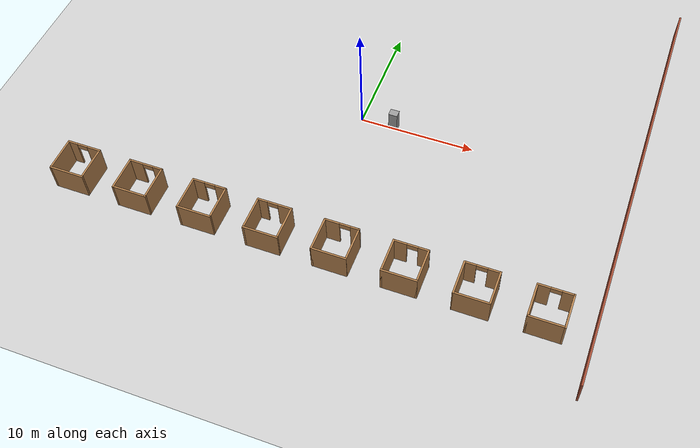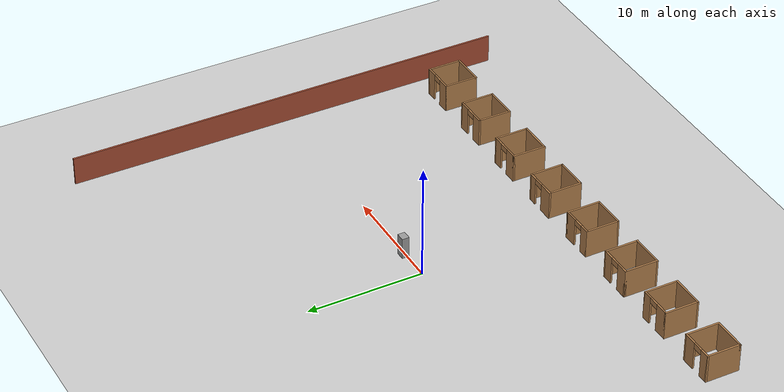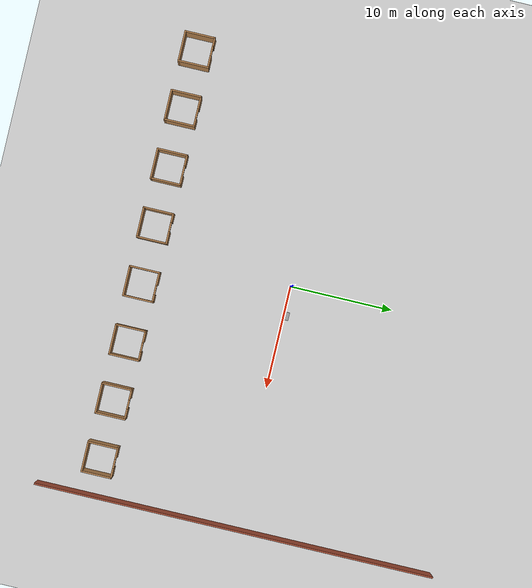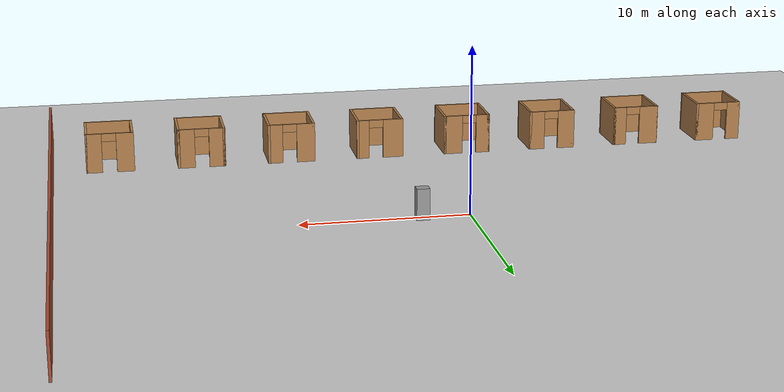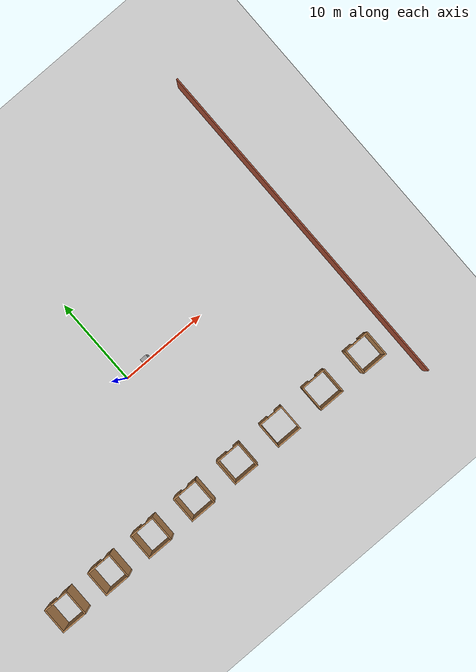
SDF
<sdf version="1.6">
 <world name="default">
  <model name="ground_plane">
   <static>1</static>
   <link name="link">
    <collision name="collision">
     <geometry><plane><normal>0 0 1</normal><size>100 100</size></plane></geometry>
     <surface>
      <contact><collide_bitmask>65535</collide_bitmask></contact>
      <friction><ode><mu>100</mu><mu2>50</mu2></ode></friction>
     </surface>
    </collision>
    <visual name="visual">
     <cast_shadows>0</cast_shadows>
     <geometry><plane><normal>0 0 1</normal><size>100 100</size></plane></geometry>
     <material>
      <script><uri>file://media/materials/scripts/gazebo.material</uri><name>Gazebo/Grey</name></script>
     </material>
    </visual>
   </link>
  </model>
  <model name="room_row">
   <pose>0.21171 -13.8601 0 0 -0 0</pose>
   <link name="Wall_11">
    <collision name="Wall_11_Collision">
     <geometry><box><size>3 0.15 2.5</size></box></geometry>
     <pose>0 0 1.25 0 -0 0</pose>
    </collision>
    <visual name="Wall_11_Visual">
     <pose>0 0 1.25 0 -0 0</pose>
     <geometry><box><size>3 0.15 2.5</size></box></geometry>
     <material>
      <script><uri>file://media/materials/scripts/gazebo.material</uri><name>Gazebo/Wood</name></script>
      <ambient>1 1 1 1</ambient>
     </material>
     <meta><layer>0</layer></meta>
    </visual>
    <pose>1.425 0 0 0 -0 -1.5708</pose>
   </link>
   <link name="Wall_12">
    <collision name="Wall_12_Collision">
     <geometry><box><size>3 0.15 2.5</size></box></geometry>
     <pose>0 0 1.25 0 -0 0</pose>
    </collision>
    <visual name="Wall_12_Visual">
     <pose>0 0 1.25 0 -0 0</pose>
     <geometry><box><size>3 0.15 2.5</size></box></geometry>
     <material>
      <script><uri>file://media/materials/scripts/gazebo.material</uri><name>Gazebo/Wood</name></script>
      <ambient>1 1 1 1</ambient>
     </material>
     <meta><layer>0</layer></meta>
    </visual>
    <pose>2.85 -1.425 0 0 -0 0</pose>
   </link>
   <link name="Wall_13">
    <collision name="Wall_13_Collision">
     <geometry><box><size>3 0.15 2.5</size></box></geometry>
     <pose>0 0 1.25 0 -0 0</pose>
    </collision>
    <visual name="Wall_13_Visual">
     <pose>0 0 1.25 0 -0 0</pose>
     <geometry><box><size>3 0.15 2.5</size></box></geometry>
     <material>
      <script><uri>file://media/materials/scripts/gazebo.material</uri><name>Gazebo/Wood</name></script>
      <ambient>1 1 1 1</ambient>
     </material>
     <meta><layer>0</layer></meta>
    </visual>
    <pose>4.275 0 0 0 -0 1.5708</pose>
   </link>
   <link name="Wall_14">
    <pose>2.85 1.425 0 0 -0 3.14159</pose>
    <visual name="Wall_14_Visual_0">
     <pose>-1.10207 0 1.25 0 -0 0</pose>
     <geometry><box><size>0.795857 0.15 2.5</size></box></geometry>
     <material>
      <script><uri>file://media/materials/scripts/gazebo.material</uri><name>Gazebo/Wood</name></script>
      <ambient>1 1 1 1</ambient>
     </material>
     <meta><layer>0</layer></meta>
    </visual>
    <collision name="Wall_14_Collision_0">
     <geometry><box><size>0.795857 0.15 2.5</size></box></geometry>
     <pose>-1.10207 0 1.25 0 -0 0</pose>
    </collision>
    <visual name="Wall_14_Visual_1">
     <pose>0.847928 0 1.25 0 -0 0</pose>
     <geometry><box><size>1.30414 0.15 2.5</size></box></geometry>
     <material>
      <script><uri>file://media/materials/scripts/gazebo.material</uri><name>Gazebo/Wood</name></script>
      <ambient>1 1 1 1</ambient>
     </material>
     <meta><layer>0</layer></meta>
    </visual>
    <collision name="Wall_14_Collision_1">
     <geometry><box><size>1.30414 0.15 2.5</size></box></geometry>
     <pose>0.847928 0 1.25 0 -0 0</pose>
    </collision>
    <visual name="Wall_14_Visual_2">
     <pose>-0.254143 0 2.25 0 -0 0</pose>
     <geometry><box><size>0.9 0.15 0.5</size></box></geometry>
     <material>
      <script><uri>file://media/materials/scripts/gazebo.material</uri><name>Gazebo/Wood</name></script>
      <ambient>1 1 1 1</ambient>
     </material>
     <meta><layer>0</layer></meta>
    </visual>
    <collision name="Wall_14_Collision_2">
     <geometry><box><size>0.9 0.15 0.5</size></box></geometry>
     <pose>-0.254143 0 2.25 0 -0 0</pose>
    </collision>
   </link>
   <link name="Wall_17">
    <collision name="Wall_17_Collision">
     <geometry><box><size>3 0.15 2.5</size></box></geometry>
     <pose>0 0 1.25 0 -0 0</pose>
    </collision>
    <visual name="Wall_17_Visual">
     <pose>0 0 1.25 0 -0 0</pose>
     <geometry><box><size>3 0.15 2.5</size></box></geometry>
     <material>
      <script><uri>file://media/materials/scripts/gazebo.material</uri><name>Gazebo/Wood</name></script>
      <ambient>1 1 1 1</ambient>
     </material>
     <meta><layer>0</layer></meta>
    </visual>
    <pose>7.125 0 0 0 -0 -1.5708</pose>
   </link>
   <link name="Wall_18">
    <collision name="Wall_18_Collision">
     <geometry><box><size>3 0.15 2.5</size></box></geometry>
     <pose>0 0 1.25 0 -0 0</pose>
    </collision>
    <visual name="Wall_18_Visual">
     <pose>0 0 1.25 0 -0 0</pose>
     <geometry><box><size>3 0.15 2.5</size></box></geometry>
     <material>
      <script><uri>file://media/materials/scripts/gazebo.material</uri><name>Gazebo/Wood</name></script>
      <ambient>1 1 1 1</ambient>
     </material>
     <meta><layer>0</layer></meta>
    </visual>
    <pose>8.55 -1.425 0 0 -0 0</pose>
   </link>
   <link name="Wall_19">
    <collision name="Wall_19_Collision">
     <geometry><box><size>3 0.15 2.5</size></box></geometry>
     <pose>0 0 1.25 0 -0 0</pose>
    </collision>
    <visual name="Wall_19_Visual">
     <pose>0 0 1.25 0 -0 0</pose>
     <geometry><box><size>3 0.15 2.5</size></box></geometry>
     <material>
      <script><uri>file://media/materials/scripts/gazebo.material</uri><name>Gazebo/Wood</name></script>
      <ambient>1 1 1 1</ambient>
     </material>
     <meta><layer>0</layer></meta>
    </visual>
    <pose>9.975 0 0 0 -0 1.5708</pose>
   </link>
   <link name="Wall_20">
    <pose>8.55 1.425 0 0 -0 3.14159</pose>
    <visual name="Wall_20_Visual_0">
     <pose>-1.03119 0 1.25 0 -0 0</pose>
     <geometry><box><size>0.937612 0.15 2.5</size></box></geometry>
     <material>
      <script><uri>file://media/materials/scripts/gazebo.material</uri><name>Gazebo/Wood</name></script>
      <ambient>1 1 1 1</ambient>
     </material>
     <meta><layer>0</layer></meta>
    </visual>
    <collision name="Wall_20_Collision_0">
     <geometry><box><size>0.937612 0.15 2.5</size></box></geometry>
     <pose>-1.03119 0 1.25 0 -0 0</pose>
    </collision>
    <visual name="Wall_20_Visual_1">
     <pose>0.918806 0 1.25 0 -0 0</pose>
     <geometry><box><size>1.16239 0.15 2.5</size></box></geometry>
     <material>
      <script><uri>file://media/materials/scripts/gazebo.material</uri><name>Gazebo/Wood</name></script>
      <ambient>1 1 1 1</ambient>
     </material>
     <meta><layer>0</layer></meta>
    </visual>
    <collision name="Wall_20_Collision_1">
     <geometry><box><size>1.16239 0.15 2.5</size></box></geometry>
     <pose>0.918806 0 1.25 0 -0 0</pose>
    </collision>
    <visual name="Wall_20_Visual_2">
     <pose>-0.112388 0 2.25 0 -0 0</pose>
     <geometry><box><size>0.9 0.15 0.5</size></box></geometry>
     <material>
      <script><uri>file://media/materials/scripts/gazebo.material</uri><name>Gazebo/Wood</name></script>
      <ambient>1 1 1 1</ambient>
     </material>
     <meta><layer>0</layer></meta>
    </visual>
    <collision name="Wall_20_Collision_2">
     <geometry><box><size>0.9 0.15 0.5</size></box></geometry>
     <pose>-0.112388 0 2.25 0 -0 0</pose>
    </collision>
   </link>
   <link name="Wall_23">
    <collision name="Wall_23_Collision">
     <geometry><box><size>3 0.15 2.5</size></box></geometry>
     <pose>0 0 1.25 0 -0 0</pose>
    </collision>
    <visual name="Wall_23_Visual">
     <pose>0 0 1.25 0 -0 0</pose>
     <geometry><box><size>3 0.15 2.5</size></box></geometry>
     <material>
      <script><uri>file://media/materials/scripts/gazebo.material</uri><name>Gazebo/Wood</name></script>
      <ambient>1 1 1 1</ambient>
     </material>
     <meta><layer>0</layer></meta>
    </visual>
    <pose>-7.125 0 0 0 -0 -1.5708</pose>
   </link>
   <link name="Wall_24">
    <collision name="Wall_24_Collision">
     <geometry><box><size>3 0.15 2.5</size></box></geometry>
     <pose>0 0 1.25 0 -0 0</pose>
    </collision>
    <visual name="Wall_24_Visual">
     <pose>0 0 1.25 0 -0 0</pose>
     <geometry><box><size>3 0.15 2.5</size></box></geometry>
     <material>
      <script><uri>file://media/materials/scripts/gazebo.material</uri><name>Gazebo/Wood</name></script>
      <ambient>1 1 1 1</ambient>
     </material>
     <meta><layer>0</layer></meta>
    </visual>
    <pose>-8.55 -1.425 0 0 -0 3.14159</pose>
   </link>
   <link name="Wall_25">
    <collision name="Wall_25_Collision">
     <geometry><box><size>3 0.15 2.5</size></box></geometry>
     <pose>0 0 1.25 0 -0 0</pose>
    </collision>
    <visual name="Wall_25_Visual">
     <pose>0 0 1.25 0 -0 0</pose>
     <geometry><box><size>3 0.15 2.5</size></box></geometry>
     <material>
      <script><uri>file://media/materials/scripts/gazebo.material</uri><name>Gazebo/Wood</name></script>
      <ambient>1 1 1 1</ambient>
     </material>
     <meta><layer>0</layer></meta>
    </visual>
    <pose>-9.975 0 0 0 -0 1.5708</pose>
   </link>
   <link name="Wall_26">
    <pose>-8.55 1.425 0 0 -0 0</pose>
    <visual name="Wall_26_Visual_0">
     <pose>-0.952424 0 1.25 0 -0 0</pose>
     <geometry><box><size>1.09515 0.15 2.5</size></box></geometry>
     <material>
      <script><uri>file://media/materials/scripts/gazebo.material</uri><name>Gazebo/Wood</name></script>
      <ambient>1 1 1 1</ambient>
     </material>
     <meta><layer>0</layer></meta>
    </visual>
    <collision name="Wall_26_Collision_0">
     <geometry><box><size>1.09515 0.15 2.5</size></box></geometry>
     <pose>-0.952424 0 1.25 0 -0 0</pose>
    </collision>
    <visual name="Wall_26_Visual_1">
     <pose>0.997576 0 1.25 0 -0 0</pose>
     <geometry><box><size>1.00485 0.15 2.5</size></box></geometry>
     <material>
      <script><uri>file://media/materials/scripts/gazebo.material</uri><name>Gazebo/Wood</name></script>
      <ambient>1 1 1 1</ambient>
     </material>
     <meta><layer>0</layer></meta>
    </visual>
    <collision name="Wall_26_Collision_1">
     <geometry><box><size>1.00485 0.15 2.5</size></box></geometry>
     <pose>0.997576 0 1.25 0 -0 0</pose>
    </collision>
    <visual name="Wall_26_Visual_2">
     <pose>0.045152 0 2.25 0 -0 0</pose>
     <geometry><box><size>0.9 0.15 0.5</size></box></geometry>
     <material>
      <script><uri>file://media/materials/scripts/gazebo.material</uri><name>Gazebo/Wood</name></script>
      <ambient>1 1 1 1</ambient>
     </material>
     <meta><layer>0</layer></meta>
    </visual>
    <collision name="Wall_26_Collision_2">
     <geometry><box><size>0.9 0.15 0.5</size></box></geometry>
     <pose>0.045152 0 2.25 0 -0 0</pose>
    </collision>
   </link>
   <link name="Wall_29">
    <collision name="Wall_29_Collision">
     <geometry><box><size>3 0.15 2.5</size></box></geometry>
     <pose>0 0 1.25 0 -0 0</pose>
    </collision>
    <visual name="Wall_29_Visual">
     <pose>0 0 1.25 0 -0 0</pose>
     <geometry><box><size>3 0.15 2.5</size></box></geometry>
     <material>
      <script><uri>file://media/materials/scripts/gazebo.material</uri><name>Gazebo/Wood</name></script>
      <ambient>1 1 1 1</ambient>
     </material>
     <meta><layer>0</layer></meta>
    </visual>
    <pose>-12.825 0 0 0 -0 -1.5708</pose>
   </link>
   <link name="Wall_30">
    <collision name="Wall_30_Collision">
     <geometry><box><size>3 0.15 2.5</size></box></geometry>
     <pose>0 0 1.25 0 -0 0</pose>
    </collision>
    <visual name="Wall_30_Visual">
     <pose>0 0 1.25 0 -0 0</pose>
     <geometry><box><size>3 0.15 2.5</size></box></geometry>
     <material>
      <script><uri>file://media/materials/scripts/gazebo.material</uri><name>Gazebo/Wood</name></script>
      <ambient>1 1 1 1</ambient>
     </material>
     <meta><layer>0</layer></meta>
    </visual>
    <pose>-14.25 -1.425 0 0 -0 3.14159</pose>
   </link>
   <link name="Wall_31">
    <collision name="Wall_31_Collision">
     <geometry><box><size>3 0.15 2.5</size></box></geometry>
     <pose>0 0 1.25 0 -0 0</pose>
    </collision>
    <visual name="Wall_31_Visual">
     <pose>0 0 1.25 0 -0 0</pose>
     <geometry><box><size>3 0.15 2.5</size></box></geometry>
     <material>
      <script><uri>file://media/materials/scripts/gazebo.material</uri><name>Gazebo/Wood</name></script>
      <ambient>1 1 1 1</ambient>
     </material>
     <meta><layer>0</layer></meta>
    </visual>
    <pose>-15.675 0 0 0 -0 1.5708</pose>
   </link>
   <link name="Wall_32">
    <pose>-14.25 1.425 0 0 -0 0</pose>
    <visual name="Wall_32_Visual_0">
     <pose>-0.881547 0 1.25 0 -0 0</pose>
     <geometry><box><size>1.23691 0.15 2.5</size></box></geometry>
     <material>
      <script><uri>file://media/materials/scripts/gazebo.material</uri><name>Gazebo/Wood</name></script>
      <ambient>1 1 1 1</ambient>
     </material>
     <meta><layer>0</layer></meta>
    </visual>
    <collision name="Wall_32_Collision_0">
     <geometry><box><size>1.23691 0.15 2.5</size></box></geometry>
     <pose>-0.881547 0 1.25 0 -0 0</pose>
    </collision>
    <visual name="Wall_32_Visual_1">
     <pose>1.06845 0 1.25 0 -0 0</pose>
     <geometry><box><size>0.863093 0.15 2.5</size></box></geometry>
     <material>
      <script><uri>file://media/materials/scripts/gazebo.material</uri><name>Gazebo/Wood</name></script>
      <ambient>1 1 1 1</ambient>
     </material>
     <meta><layer>0</layer></meta>
    </visual>
    <collision name="Wall_32_Collision_1">
     <geometry><box><size>0.863093 0.15 2.5</size></box></geometry>
     <pose>1.06845 0 1.25 0 -0 0</pose>
    </collision>
    <visual name="Wall_32_Visual_2">
     <pose>0.186907 0 2.25 0 -0 0</pose>
     <geometry><box><size>0.9 0.15 0.5</size></box></geometry>
     <material>
      <script><uri>file://media/materials/scripts/gazebo.material</uri><name>Gazebo/Wood</name></script>
      <ambient>1 1 1 1</ambient>
     </material>
     <meta><layer>0</layer></meta>
    </visual>
    <collision name="Wall_32_Collision_2">
     <geometry><box><size>0.9 0.15 0.5</size></box></geometry>
     <pose>0.186907 0 2.25 0 -0 0</pose>
    </collision>
   </link>
   <link name="Wall_35">
    <collision name="Wall_35_Collision">
     <geometry><box><size>3 0.15 2.5</size></box></geometry>
     <pose>0 0 1.25 0 -0 0</pose>
    </collision>
    <visual name="Wall_35_Visual">
     <pose>0 0 1.25 0 -0 0</pose>
     <geometry><box><size>3 0.15 2.5</size></box></geometry>
     <material>
      <script><uri>file://media/materials/scripts/gazebo.material</uri><name>Gazebo/Wood</name></script>
      <ambient>1 1 1 1</ambient>
     </material>
     <meta><layer>0</layer></meta>
    </visual>
    <pose>12.825 0 0 0 -0 -1.5708</pose>
   </link>
   <link name="Wall_36">
    <collision name="Wall_36_Collision">
     <geometry><box><size>3 0.15 2.5</size></box></geometry>
     <pose>0 0 1.25 0 -0 0</pose>
    </collision>
    <visual name="Wall_36_Visual">
     <pose>0 0 1.25 0 -0 0</pose>
     <geometry><box><size>3 0.15 2.5</size></box></geometry>
     <material>
      <script><uri>file://media/materials/scripts/gazebo.material</uri><name>Gazebo/Wood</name></script>
      <ambient>1 1 1 1</ambient>
     </material>
     <meta><layer>0</layer></meta>
    </visual>
    <pose>14.25 -1.425 0 0 -0 0</pose>
   </link>
   <link name="Wall_37">
    <collision name="Wall_37_Collision">
     <geometry><box><size>3 0.15 2.5</size></box></geometry>
     <pose>0 0 1.25 0 -0 0</pose>
    </collision>
    <visual name="Wall_37_Visual">
     <pose>0 0 1.25 0 -0 0</pose>
     <geometry><box><size>3 0.15 2.5</size></box></geometry>
     <material>
      <script><uri>file://media/materials/scripts/gazebo.material</uri><name>Gazebo/Wood</name></script>
      <ambient>1 1 1 1</ambient>
     </material>
     <meta><layer>0</layer></meta>
    </visual>
    <pose>15.675 0 0 0 -0 1.5708</pose>
   </link>
   <link name="Wall_38">
    <pose>14.25 1.425 0 0 -0 3.14159</pose>
    <visual name="Wall_38_Visual_0">
     <pose>-0.960316 0 1.25 0 -0 0</pose>
     <geometry><box><size>1.07937 0.15 2.5</size></box></geometry>
     <material>
      <script><uri>file://media/materials/scripts/gazebo.material</uri><name>Gazebo/Wood</name></script>
      <ambient>1 1 1 1</ambient>
     </material>
     <meta><layer>0</layer></meta>
    </visual>
    <collision name="Wall_38_Collision_0">
     <geometry><box><size>1.07937 0.15 2.5</size></box></geometry>
     <pose>-0.960316 0 1.25 0 -0 0</pose>
    </collision>
    <visual name="Wall_38_Visual_1">
     <pose>0.989684 0 1.25 0 -0 0</pose>
     <geometry><box><size>1.02063 0.15 2.5</size></box></geometry>
     <material>
      <script><uri>file://media/materials/scripts/gazebo.material</uri><name>Gazebo/Wood</name></script>
      <ambient>1 1 1 1</ambient>
     </material>
     <meta><layer>0</layer></meta>
    </visual>
    <collision name="Wall_38_Collision_1">
     <geometry><box><size>1.02063 0.15 2.5</size></box></geometry>
     <pose>0.989684 0 1.25 0 -0 0</pose>
    </collision>
    <visual name="Wall_38_Visual_2">
     <pose>0.029367 0 2.25 0 -0 0</pose>
     <geometry><box><size>0.9 0.15 0.5</size></box></geometry>
     <material>
      <script><uri>file://media/materials/scripts/gazebo.material</uri><name>Gazebo/Wood</name></script>
      <ambient>1 1 1 1</ambient>
     </material>
     <meta><layer>0</layer></meta>
    </visual>
    <collision name="Wall_38_Collision_2">
     <geometry><box><size>0.9 0.15 0.5</size></box></geometry>
     <pose>0.029367 0 2.25 0 -0 0</pose>
    </collision>
   </link>
   <link name="Wall_41">
    <collision name="Wall_41_Collision">
     <geometry><box><size>3 0.15 2.5</size></box></geometry>
     <pose>0 0 1.25 0 -0 0</pose>
    </collision>
    <visual name="Wall_41_Visual">
     <pose>0 0 1.25 0 -0 0</pose>
     <geometry><box><size>3 0.15 2.5</size></box></geometry>
     <material>
      <script><uri>file://media/materials/scripts/gazebo.material</uri><name>Gazebo/Wood</name></script>
      <ambient>1 1 1 1</ambient>
     </material>
     <meta><layer>0</layer></meta>
    </visual>
    <pose>-18.525 0 0 0 -0 -1.5708</pose>
   </link>
   <link name="Wall_42">
    <collision name="Wall_42_Collision">
     <geometry><box><size>3 0.15 2.5</size></box></geometry>
     <pose>0 0 1.25 0 -0 0</pose>
    </collision>
    <visual name="Wall_42_Visual">
     <pose>0 0 1.25 0 -0 0</pose>
     <geometry><box><size>3 0.15 2.5</size></box></geometry>
     <material>
      <script><uri>file://media/materials/scripts/gazebo.material</uri><name>Gazebo/Wood</name></script>
      <ambient>1 1 1 1</ambient>
     </material>
     <meta><layer>0</layer></meta>
    </visual>
    <pose>-19.95 -1.425 0 0 -0 3.14159</pose>
   </link>
   <link name="Wall_45">
    <pose>-19.95 1.425 0 0 -0 3.14159</pose>
    <visual name="Wall_45_Visual_0">
     <pose>-0.89308 0 1.25 0 -0 0</pose>
     <geometry><box><size>1.21384 0.15 2.5</size></box></geometry>
     <material>
      <script><uri>file://media/materials/scripts/gazebo.material</uri><name>Gazebo/Wood</name></script>
      <ambient>1 1 1 1</ambient>
     </material>
     <meta><layer>0</layer></meta>
    </visual>
    <collision name="Wall_45_Collision_0">
     <geometry><box><size>1.21384 0.15 2.5</size></box></geometry>
     <pose>-0.89308 0 1.25 0 -0 0</pose>
    </collision>
    <visual name="Wall_45_Visual_1">
     <pose>1.05692 0 1.25 0 -0 0</pose>
     <geometry><box><size>0.886161 0.15 2.5</size></box></geometry>
     <material>
      <script><uri>file://media/materials/scripts/gazebo.material</uri><name>Gazebo/Wood</name></script>
      <ambient>1 1 1 1</ambient>
     </material>
     <meta><layer>0</layer></meta>
    </visual>
    <collision name="Wall_45_Collision_1">
     <geometry><box><size>0.886161 0.15 2.5</size></box></geometry>
     <pose>1.05692 0 1.25 0 -0 0</pose>
    </collision>
    <visual name="Wall_45_Visual_2">
     <pose>0.163839 0 2.25 0 -0 0</pose>
     <geometry><box><size>0.9 0.15 0.5</size></box></geometry>
     <material>
      <script><uri>file://media/materials/scripts/gazebo.material</uri><name>Gazebo/Wood</name></script>
      <ambient>1 1 1 1</ambient>
     </material>
     <meta><layer>0</layer></meta>
    </visual>
    <collision name="Wall_45_Collision_2">
     <geometry><box><size>0.9 0.15 0.5</size></box></geometry>
     <pose>0.163839 0 2.25 0 -0 0</pose>
    </collision>
   </link>
   <link name="Wall_46">
    <collision name="Wall_46_Collision">
     <geometry><box><size>3 0.15 2.5</size></box></geometry>
     <pose>0 0 1.25 0 -0 0</pose>
    </collision>
    <visual name="Wall_46_Visual">
     <pose>0 0 1.25 0 -0 0</pose>
     <geometry><box><size>3 0.15 2.5</size></box></geometry>
     <material>
      <script><uri>file://media/materials/scripts/gazebo.material</uri><name>Gazebo/Wood</name></script>
      <ambient>1 1 1 1</ambient>
     </material>
     <meta><layer>0</layer></meta>
    </visual>
    <pose>-21.375 0 0 0 -0 -1.5708</pose>
   </link>
   <link name="Wall_49">
    <collision name="Wall_49_Collision">
     <geometry><box><size>3 0.15 2.5</size></box></geometry>
     <pose>0 0 1.25 0 -0 0</pose>
    </collision>
    <visual name="Wall_49_Visual">
     <pose>0 0 1.25 0 -0 0</pose>
     <geometry><box><size>3 0.15 2.5</size></box></geometry>
     <material>
      <script><uri>file://media/materials/scripts/gazebo.material</uri><name>Gazebo/Wood</name></script>
      <ambient>1 1 1 1</ambient>
     </material>
     <meta><layer>0</layer></meta>
    </visual>
    <pose>18.525 0 0 0 -0 -1.5708</pose>
   </link>
   <link name="Wall_5">
    <pose>-2.85 1.425 0 0 -0 0</pose>
    <visual name="Wall_5_Visual_0">
     <pose>-1.05848 0 1.25 0 -0 0</pose>
     <geometry><box><size>0.883039 0.15 2.5</size></box></geometry>
     <material>
      <script><uri>file://media/materials/scripts/gazebo.material</uri><name>Gazebo/Wood</name></script>
      <ambient>1 1 1 1</ambient>
     </material>
     <meta><layer>0</layer></meta>
    </visual>
    <collision name="Wall_5_Collision_0">
     <geometry><box><size>0.883039 0.15 2.5</size></box></geometry>
     <pose>-1.05848 0 1.25 0 -0 0</pose>
    </collision>
    <visual name="Wall_5_Visual_1">
     <pose>0.891519 0 1.25 0 -0 0</pose>
     <geometry><box><size>1.21696 0.15 2.5</size></box></geometry>
     <material>
      <script><uri>file://media/materials/scripts/gazebo.material</uri><name>Gazebo/Wood</name></script>
      <ambient>1 1 1 1</ambient>
     </material>
     <meta><layer>0</layer></meta>
    </visual>
    <collision name="Wall_5_Collision_1">
     <geometry><box><size>1.21696 0.15 2.5</size></box></geometry>
     <pose>0.891519 0 1.25 0 -0 0</pose>
    </collision>
    <visual name="Wall_5_Visual_2">
     <pose>-0.166961 0 2.25 0 -0 0</pose>
     <geometry><box><size>0.9 0.15 0.5</size></box></geometry>
     <material>
      <script><uri>file://media/materials/scripts/gazebo.material</uri><name>Gazebo/Wood</name></script>
      <ambient>1 1 1 1</ambient>
     </material>
     <meta><layer>0</layer></meta>
    </visual>
    <collision name="Wall_5_Collision_2">
     <geometry><box><size>0.9 0.15 0.5</size></box></geometry>
     <pose>-0.166961 0 2.25 0 -0 0</pose>
    </collision>
   </link>
   <link name="Wall_51">
    <collision name="Wall_51_Collision">
     <geometry><box><size>3 0.15 2.5</size></box></geometry>
     <pose>0 0 1.25 0 -0 0</pose>
    </collision>
    <visual name="Wall_51_Visual">
     <pose>0 0 1.25 0 -0 0</pose>
     <geometry><box><size>3 0.15 2.5</size></box></geometry>
     <material>
      <script><uri>file://media/materials/scripts/gazebo.material</uri><name>Gazebo/Wood</name></script>
      <ambient>1 1 1 1</ambient>
     </material>
     <meta><layer>0</layer></meta>
    </visual>
    <pose>19.95 -1.425 0 0 -0 0</pose>
   </link>
   <link name="Wall_53">
    <collision name="Wall_53_Collision">
     <geometry><box><size>3 0.15 2.5</size></box></geometry>
     <pose>0 0 1.25 0 -0 0</pose>
    </collision>
    <visual name="Wall_53_Visual">
     <pose>0 0 1.25 0 -0 0</pose>
     <geometry><box><size>3 0.15 2.5</size></box></geometry>
     <material>
      <script><uri>file://media/materials/scripts/gazebo.material</uri><name>Gazebo/Wood</name></script>
      <ambient>1 1 1 1</ambient>
     </material>
     <meta><layer>0</layer></meta>
    </visual>
    <pose>21.375 0 0 0 -0 1.5708</pose>
   </link>
   <link name="Wall_54">
    <pose>19.95 1.425 0 0 -0 3.14159</pose>
    <visual name="Wall_54_Visual_0">
     <pose>-0.994975 0 1.25 0 -0 0</pose>
     <geometry><box><size>1.01005 0.15 2.5</size></box></geometry>
     <material>
      <script><uri>file://media/materials/scripts/gazebo.material</uri><name>Gazebo/Wood</name></script>
      <ambient>1 1 1 1</ambient>
     </material>
     <meta><layer>0</layer></meta>
    </visual>
    <collision name="Wall_54_Collision_0">
     <geometry><box><size>1.01005 0.15 2.5</size></box></geometry>
     <pose>-0.994975 0 1.25 0 -0 0</pose>
    </collision>
    <visual name="Wall_54_Visual_1">
     <pose>0.955025 0 1.25 0 -0 0</pose>
     <geometry><box><size>1.08995 0.15 2.5</size></box></geometry>
     <material>
      <script><uri>file://media/materials/scripts/gazebo.material</uri><name>Gazebo/Wood</name></script>
      <ambient>1 1 1 1</ambient>
     </material>
     <meta><layer>0</layer></meta>
    </visual>
    <collision name="Wall_54_Collision_1">
     <geometry><box><size>1.08995 0.15 2.5</size></box></geometry>
     <pose>0.955025 0 1.25 0 -0 0</pose>
    </collision>
    <visual name="Wall_54_Visual_2">
     <pose>-0.039949 0 2.25 0 -0 0</pose>
     <geometry><box><size>0.9 0.15 0.5</size></box></geometry>
     <material>
      <script><uri>file://media/materials/scripts/gazebo.material</uri><name>Gazebo/Wood</name></script>
      <ambient>1 1 1 1</ambient>
     </material>
     <meta><layer>0</layer></meta>
    </visual>
    <collision name="Wall_54_Collision_2">
     <geometry><box><size>0.9 0.15 0.5</size></box></geometry>
     <pose>-0.039949 0 2.25 0 -0 0</pose>
    </collision>
   </link>
   <link name="Wall_6">
    <collision name="Wall_6_Collision">
     <geometry><box><size>3 0.15 2.5</size></box></geometry>
     <pose>0 0 1.25 0 -0 0</pose>
    </collision>
    <visual name="Wall_6_Visual">
     <pose>0 0 1.25 0 -0 0</pose>
     <geometry><box><size>3 0.15 2.5</size></box></geometry>
     <material>
      <script><uri>file://media/materials/scripts/gazebo.material</uri><name>Gazebo/Wood</name></script>
      <ambient>1 1 1 1</ambient>
     </material>
     <meta><layer>0</layer></meta>
    </visual>
    <pose>-1.425 0 0 0 -0 -1.5708</pose>
   </link>
   <link name="Wall_7">
    <collision name="Wall_7_Collision">
     <geometry><box><size>3 0.15 2.5</size></box></geometry>
     <pose>0 0 1.25 0 -0 0</pose>
    </collision>
    <visual name="Wall_7_Visual">
     <pose>0 0 1.25 0 -0 0</pose>
     <geometry><box><size>3 0.15 2.5</size></box></geometry>
     <material>
      <script><uri>file://media/materials/scripts/gazebo.material</uri><name>Gazebo/Wood</name></script>
      <ambient>1 1 1 1</ambient>
     </material>
     <meta><layer>0</layer></meta>
    </visual>
    <pose>-2.85 -1.425 0 0 -0 3.14159</pose>
   </link>
   <link name="Wall_8">
    <collision name="Wall_8_Collision">
     <geometry><box><size>3 0.15 2.5</size></box></geometry>
     <pose>0 0 1.25 0 -0 0</pose>
    </collision>
    <visual name="Wall_8_Visual">
     <pose>0 0 1.25 0 -0 0</pose>
     <geometry><box><size>3 0.15 2.5</size></box></geometry>
     <material>
      <script><uri>file://media/materials/scripts/gazebo.material</uri><name>Gazebo/Wood</name></script>
      <ambient>1 1 1 1</ambient>
     </material>
     <meta><layer>0</layer></meta>
    </visual>
    <pose>-4.275 0 0 0 -0 1.5708</pose>
   </link>
   <static>1</static>
  </model>
  <model name="wall_vert_clone">
   <link name="Wall_106">
    <pose>0 1e-06 0 0 0 -1.5708</pose>
    <inertial>
     <mass>1</mass>
     <inertia><ixx>1</ixx><ixy>0</ixy><ixz>0</ixz><iyy>1</iyy><iyz>0</iyz><izz>1</izz></inertia>
    </inertial>
    <visual name="Wall_106_Visual">
     <pose>0 0 1.25 0 -0 0</pose>
     <geometry><box><size>38.75 0.15 2.5</size></box></geometry>
     <material>
      <script><uri>file://media/materials/scripts/gazebo.material</uri><name>Gazebo/Bricks</name></script>
      <ambient>1 1 1 1</ambient>
      <shader type="pixel"><normal_map>__default__</normal_map></shader>
      <diffuse>0.7 0.7 0.7 1</diffuse>
      <specular>0.01 0.01 0.01 1</specular>
      <emissive>0 0 0 1</emissive>
     </material>
     <meta><layer>0</layer></meta>
    </visual>
    <collision name="Wall_106_Collision">
     <pose>0 0 1.25 0 -0 0</pose>
     <geometry><box><size>38.75 0.15 2.5</size></box></geometry>
     <surface>
      <friction>
       <ode><mu>1</mu><mu2>1</mu2><fdir1>0 0 0</fdir1><slip1>0</slip1><slip2>0</slip2></ode>
       <torsional>
        <coefficient>1</coefficient>
        <patch_radius>0</patch_radius>
        <surface_radius>0</surface_radius>
        <use_patch_radius>1</use_patch_radius>
        <ode><slip>0</slip></ode>
       </torsional>
      </friction>
      <bounce><restitution_coefficient>0</restitution_coefficient><threshold>1e+06</threshold></bounce>
      <contact>
       <collide_without_contact>0</collide_without_contact>
       <collide_without_contact_bitmask>1</collide_without_contact_bitmask>
       <collide_bitmask>1</collide_bitmask>
       <ode>
        <soft_cfm>0</soft_cfm>
        <soft_erp>0.2</soft_erp>
        <kp>1e+13</kp>
        <kd>1</kd>
        <max_vel>0.01</max_vel>
        <min_depth>0</min_depth>
       </ode>
       <bullet>
        <split_impulse>1</split_impulse>
        <split_impulse_penetration_threshold>-0.01</split_impulse_penetration_threshold>
        <soft_cfm>0</soft_cfm>
        <soft_erp>0.2</soft_erp>
        <kp>1e+13</kp>
        <kd>1</kd>
       </bullet>
      </contact>
     </surface>
    </collision>
   </link>
   <static>1</static>
   <pose>23.7593 0.001416 0 0 -0 0</pose>
  </model>
  <model name="human_cuboid">
   <link name="link">
    <inertial>
     <mass>1</mass>
     <inertia>
      <ixx>0.166667</ixx>
      <ixy>0</ixy>
      <ixz>0</ixz>
      <iyy>0.166667</iyy>
      <iyz>0</iyz>
      <izz>0.166667</izz>
     </inertia>
    </inertial>
    <visual name="visual">
     <geometry><box><size>0.768949 0.627328 1.88406</size></box></geometry>
     <material>
      <script><name>Gazebo/Grey</name><uri>file://media/materials/scripts/gazebo.material</uri></script>
      <shader type="pixel"/>
      <ambient>0.3 0.3 0.3 1</ambient>
      <diffuse>0.7 0.7 0.7 1</diffuse>
      <specular>0.01 0.01 0.01 1</specular>
      <emissive>0 0 0 1</emissive>
     </material>
    </visual>
    <collision name="collision">
     <geometry><box><size>0.768949 0.627328 1.88406</size></box></geometry>
     <surface>
      <friction>
       <ode><mu>1</mu><mu2>1</mu2><fdir1>0 0 0</fdir1><slip1>0</slip1><slip2>0</slip2></ode>
       <torsional>
        <coefficient>1</coefficient>
        <patch_radius>0</patch_radius>
        <surface_radius>0</surface_radius>
        <use_patch_radius>1</use_patch_radius>
        <ode><slip>0</slip></ode>
       </torsional>
      </friction>
      <bounce><restitution_coefficient>0</restitution_coefficient><threshold>1e+06</threshold></bounce>
      <contact>
       <collide_without_contact>0</collide_without_contact>
       <collide_without_contact_bitmask>1</collide_without_contact_bitmask>
       <collide_bitmask>1</collide_bitmask>
       <ode>
        <soft_cfm>0</soft_cfm>
        <soft_erp>0.2</soft_erp>
        <kp>1e+13</kp>
        <kd>1</kd>
        <max_vel>0.01</max_vel>
        <min_depth>0</min_depth>
       </ode>
       <bullet>
        <split_impulse>1</split_impulse>
        <split_impulse_penetration_threshold>-0.01</split_impulse_penetration_threshold>
        <soft_cfm>0</soft_cfm>
        <soft_erp>0.2</soft_erp>
        <kp>1e+13</kp>
        <kd>1</kd>
       </bullet>
      </contact>
     </surface>
    </collision>
   </link>
   <static>0</static>
   <pose>2.85708 0.155678 0.942028 -2e-06 -3e-06 8.9e-05</pose>
  </model>
 </world>
</sdf>
